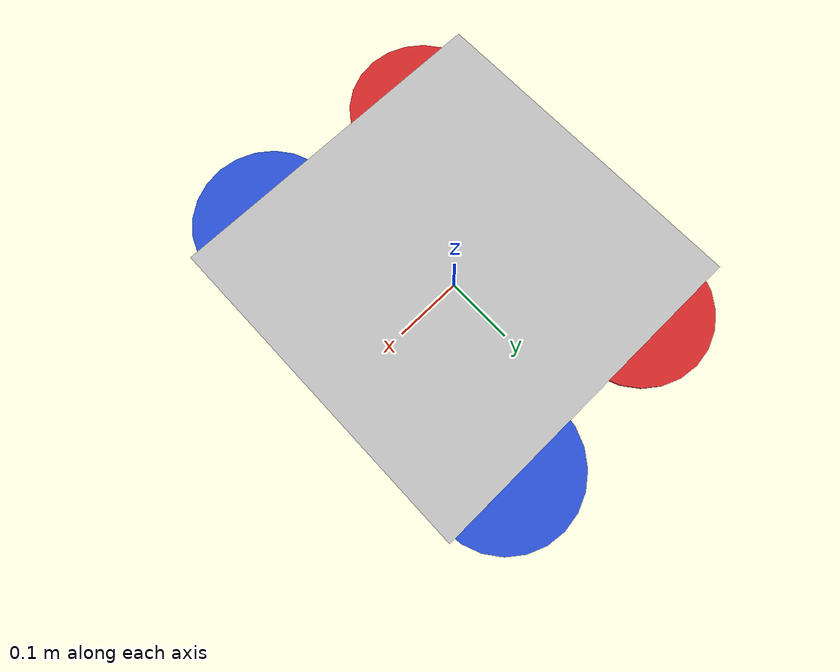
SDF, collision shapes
<?xml version="1.0"?>
<sdf version="1.9">
  <model name="x3_with_depth_cam">
    <!-- Include the base X3 UAV model -->
    <include>
      <uri>https://fuel.gazebosim.org/1.0/OpenRobotics/models/X3 UAV</uri>
      <name>x3_base</name>
    </include>

    <!-- Depth Camera Link -->
    <link name="depth_camera_link">
      <pose>0.15 0 0.08 0 0.2 0</pose> <!-- Forward-facing, slight downward tilt -->
      <inertial>
        <mass>0.05</mass>
        <inertia>
          <ixx>0.00001</ixx>
          <ixy>0</ixy>
          <ixz>0</ixz>
          <iyy>0.00001</iyy>
          <iyz>0</iyz>
          <izz>0.00001</izz>
        </inertia>
      </inertial>

      <!-- Camera visual representation -->
      <visual name="camera_visual">
        <geometry>
          <box>
            <size>0.03 0.06 0.03</size>
          </box>
        </geometry>
        <material>
          <ambient>0.2 0.2 0.2 1</ambient>
          <diffuse>0.3 0.3 0.3 1</diffuse>
          <specular>0.5 0.5 0.5 1</specular>
        </material>
      </visual>

      <collision name="camera_collision">
        <geometry>
          <box>
            <size>0.03 0.06 0.03</size>
          </box>
        </geometry>
      </collision>

      <!-- RGBD Camera Sensor -->
      <sensor name="depth_camera" type="rgbd_camera">
        <pose>0.015 0 0 0 0 0</pose>
        <camera>
          <horizontal_fov>1.047</horizontal_fov> <!-- 60 degrees -->
          <image>
            <width>640</width>
            <height>480</height>
            <format>R8G8B8</format>
          </image>
          <clip>
            <near>0.1</near>
            <far>20.0</far>
          </clip>
          <depth_camera>
            <clip>
              <near>0.1</near>
              <far>20.0</far>
            </clip>
          </depth_camera>
        </camera>
        <update_rate>30</update_rate>
        <topic>depth_camera</topic>
        <always_on>true</always_on>
        <visualize>true</visualize>
      </sensor>
    </link>

    <!-- Joint to attach camera to X3 base_link -->
    <joint name="depth_camera_joint" type="fixed">
      <parent>x3_base::X3/base_link</parent>
      <child>depth_camera_link</child>
    </joint>

    <!-- Pose control plugin for moving the drone -->
    <plugin
      filename="gz-sim-pose-publisher-system"
      name="gz::sim::systems::PosePublisher">
      <publish_link_pose>true</publish_link_pose>
      <publish_collision_pose>false</publish_collision_pose>
      <publish_visual_pose>false</publish_visual_pose>
      <publish_nested_model_pose>true</publish_nested_model_pose>
      <update_frequency>30</update_frequency>
    </plugin>

  </model>
</sdf>

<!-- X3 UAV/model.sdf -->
<sdf version='1.6'>
  <model name='x3'>
    <pose>0 0 0.053302 0 0 0</pose>
    <link name='X3/base_link'>
      <pose frame=''>0 0 0 0 -0 0</pose>
      <inertial>
        <pose frame=''>0 0 0 0 -0 0</pose>
        <mass>1.5</mass>
        <inertia>
          <ixx>0.0347563</ixx>
          <ixy>0</ixy>
          <ixz>0</ixz>
          <iyy>0.07</iyy>
          <iyz>0</iyz>
          <izz>0.0977</izz>
        </inertia>
      </inertial>
      <collision name='X3/base_link_inertia_collision'>
        <pose frame=''>0 0 0 0 -0 0</pose>
        <geometry>
          <box>
            <size>0.47 0.47 0.11</size>
          </box>
        </geometry>
      </collision>
      <visual name='X3/base_link_inertia_visual'>
        <pose frame=''>0 0 0 0 -0 0</pose>
        <geometry>
          <mesh>
            <scale>1 1 1</scale>
            <uri>model://x3/meshes/x3.dae</uri>
          </mesh>
        </geometry>
      </visual>
    </link>
    <link name='X3/rotor_0'>
      <pose frame=''>0.13 -0.22 0.023 0 -0 0</pose>
      <inertial>
        <pose frame=''>0 0 0 0 -0 0</pose>
        <mass>0.005</mass>
        <inertia>
          <ixx>9.75e-07</ixx>
          <ixy>0</ixy>
          <ixz>0</ixz>
          <iyy>4.17041e-05</iyy>
          <iyz>0</iyz>
          <izz>4.26041e-05</izz>
        </inertia>
      </inertial>
      <collision name='X3/rotor_0_collision'>
        <pose frame=''>0 0 0 0 -0 0</pose>
        <geometry>
          <cylinder>
            <length>0.005</length>
            <radius>0.1</radius>
          </cylinder>
        </geometry>
        <surface>
          <contact>
            <ode/>
          </contact>
          <friction>
            <ode/>
          </friction>
        </surface>
      </collision>
      <visual name='X3/rotor_0_visual'>
        <pose frame=''>0 0 0 0 -0 0</pose>
        <geometry>
          <mesh>
            <scale>0.1 0.1 0.1</scale>
            <uri>model://x3/meshes/propeller_ccw.dae</uri>
          </mesh>
        </geometry>
        <material>
          <script>
            <name>Gazebo/Blue</name>
            <uri>file://usr/share/gz/gz-sim8/media/gazebo.material</uri>
          </script>
        </material>
      </visual>
      <gravity>1</gravity>
      <velocity_decay/>
    </link>
    <joint name='X3/rotor_0_joint' type='revolute'>
      <child>X3/rotor_0</child>
      <parent>X3/base_link</parent>
      <axis>
        <xyz>0 0 1</xyz>
        <limit>
          <lower>-1e+16</lower>
          <upper>1e+16</upper>
        </limit>
        <dynamics>
          <spring_reference>0</spring_reference>
          <spring_stiffness>0</spring_stiffness>
        </dynamics>
        <use_parent_model_frame>1</use_parent_model_frame>
      </axis>
    </joint>
    <link name='X3/rotor_1'>
      <pose frame=''>-0.13 0.2 0.023 0 -0 0</pose>
      <inertial>
        <pose frame=''>0 0 0 0 -0 0</pose>
        <mass>0.005</mass>
        <inertia>
          <ixx>9.75e-07</ixx>
          <ixy>0</ixy>
          <ixz>0</ixz>
          <iyy>4.17041e-05</iyy>
          <iyz>0</iyz>
          <izz>4.26041e-05</izz>
        </inertia>
      </inertial>
      <collision name='X3/rotor_1_collision'>
        <pose frame=''>0 0 0 0 -0 0</pose>
        <geometry>
          <cylinder>
            <length>0.005</length>
            <radius>0.1</radius>
          </cylinder>
        </geometry>
        <surface>
          <contact>
            <ode/>
          </contact>
          <friction>
            <ode/>
          </friction>
        </surface>
      </collision>
      <visual name='X3/rotor_1_visual'>
        <pose frame=''>0 0 0 0 -0 0</pose>
        <geometry>
          <mesh>
            <scale>0.1 0.1 0.1</scale>
            <uri>model://x3/meshes/propeller_ccw.dae</uri>
          </mesh>
        </geometry>
        <material>
          <script>
            <name>Gazebo/Red</name>
            <uri>file://usr/share/gz/gz-sim8/media/gazebo.material</uri>
          </script>
        </material>
      </visual>
      <gravity>1</gravity>
      <velocity_decay/>
    </link>
    <joint name='X3/rotor_1_joint' type='revolute'>
      <child>X3/rotor_1</child>
      <parent>X3/base_link</parent>
      <axis>
        <xyz>0 0 1</xyz>
        <limit>
          <lower>-1e+16</lower>
          <upper>1e+16</upper>
        </limit>
        <dynamics>
          <spring_reference>0</spring_reference>
          <spring_stiffness>0</spring_stiffness>
        </dynamics>
        <use_parent_model_frame>1</use_parent_model_frame>
      </axis>
    </joint>
    <link name='X3/rotor_2'>
      <pose frame=''>0.13 0.22 0.023 0 -0 0</pose>
      <inertial>
        <pose frame=''>0 0 0 0 -0 0</pose>
        <mass>0.005</mass>
        <inertia>
          <ixx>9.75e-07</ixx>
          <ixy>0</ixy>
          <ixz>0</ixz>
          <iyy>4.17041e-05</iyy>
          <iyz>0</iyz>
          <izz>4.26041e-05</izz>
        </inertia>
      </inertial>
      <collision name='X3/rotor_2_collision'>
        <pose frame=''>0 0 0 0 -0 0</pose>
        <geometry>
          <cylinder>
            <length>0.005</length>
            <radius>0.1</radius>
          </cylinder>
        </geometry>
        <surface>
          <contact>
            <ode/>
          </contact>
          <friction>
            <ode/>
          </friction>
        </surface>
      </collision>
      <visual name='X3/rotor_2_visual'>
        <pose frame=''>0 0 0 0 -0 0</pose>
        <geometry>
          <mesh>
            <scale>0.1 0.1 0.1</scale>
            <uri>model://x3/meshes/propeller_cw.dae</uri>
          </mesh>
        </geometry>
        <material>
          <script>
            <name>Gazebo/Blue</name>
            <uri>file://usr/share/gz/gz-sim8/media/gazebo.material</uri>
          </script>
        </material>
      </visual>
      <gravity>1</gravity>
      <velocity_decay/>
    </link>
    <joint name='X3/rotor_2_joint' type='revolute'>
      <child>X3/rotor_2</child>
      <parent>X3/base_link</parent>
      <axis>
        <xyz>0 0 1</xyz>
        <limit>
          <lower>-1e+16</lower>
          <upper>1e+16</upper>
        </limit>
        <dynamics>
          <spring_reference>0</spring_reference>
          <spring_stiffness>0</spring_stiffness>
        </dynamics>
        <use_parent_model_frame>1</use_parent_model_frame>
      </axis>
    </joint>
    <link name='X3/rotor_3'>
      <pose frame=''>-0.13 -0.2 0.023 0 -0 0</pose>
      <inertial>
        <pose frame=''>0 0 0 0 -0 0</pose>
        <mass>0.005</mass>
        <inertia>
          <ixx>9.75e-07</ixx>
          <ixy>0</ixy>
          <ixz>0</ixz>
          <iyy>4.17041e-05</iyy>
          <iyz>0</iyz>
          <izz>4.26041e-05</izz>
        </inertia>
      </inertial>
      <collision name='X3/rotor_3_collision'>
        <pose frame=''>0 0 0 0 -0 0</pose>
        <geometry>
          <cylinder>
            <length>0.005</length>
            <radius>0.1</radius>
          </cylinder>
        </geometry>
        <surface>
          <contact>
            <ode/>
          </contact>
          <friction>
            <ode/>
          </friction>
        </surface>
      </collision>
      <visual name='X3/rotor_3_visual'>
        <pose frame=''>0 0 0 0 -0 0</pose>
        <geometry>
          <mesh>
            <scale>0.1 0.1 0.1</scale>
            <uri>model://x3/meshes/propeller_cw.dae</uri>
          </mesh>
        </geometry>
        <material>
          <script>
            <name>Gazebo/Red</name>
            <uri>file://usr/share/gz/gz-sim8/media/gazebo.material</uri>
          </script>
        </material>
      </visual>
      <gravity>1</gravity>
      <velocity_decay/>
    </link>
    <joint name='X3/rotor_3_joint' type='revolute'>
      <child>X3/rotor_3</child>
      <parent>X3/base_link</parent>
      <axis>
        <xyz>0 0 1</xyz>
        <limit>
          <lower>-1e+16</lower>
          <upper>1e+16</upper>
        </limit>
        <dynamics>
          <spring_reference>0</spring_reference>
          <spring_stiffness>0</spring_stiffness>
        </dynamics>
        <use_parent_model_frame>1</use_parent_model_frame>
      </axis>
    </joint>
  </model>
</sdf>
